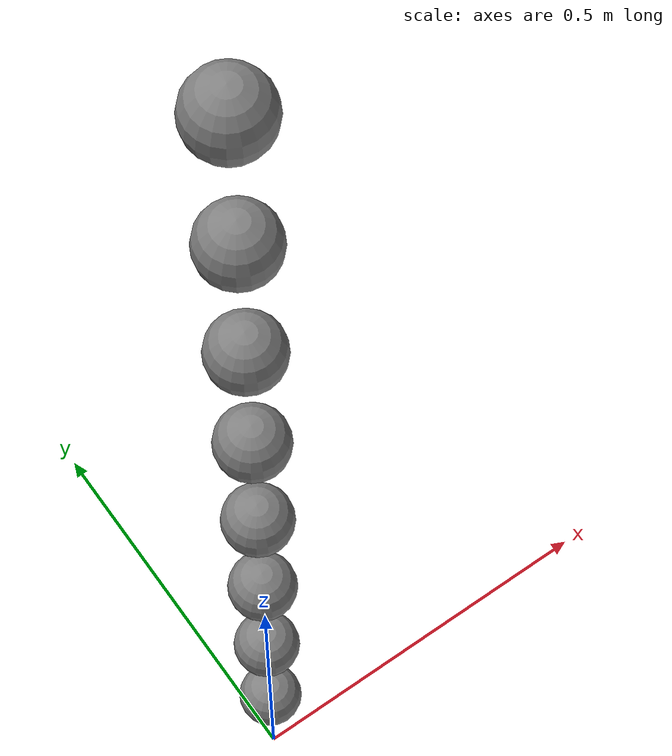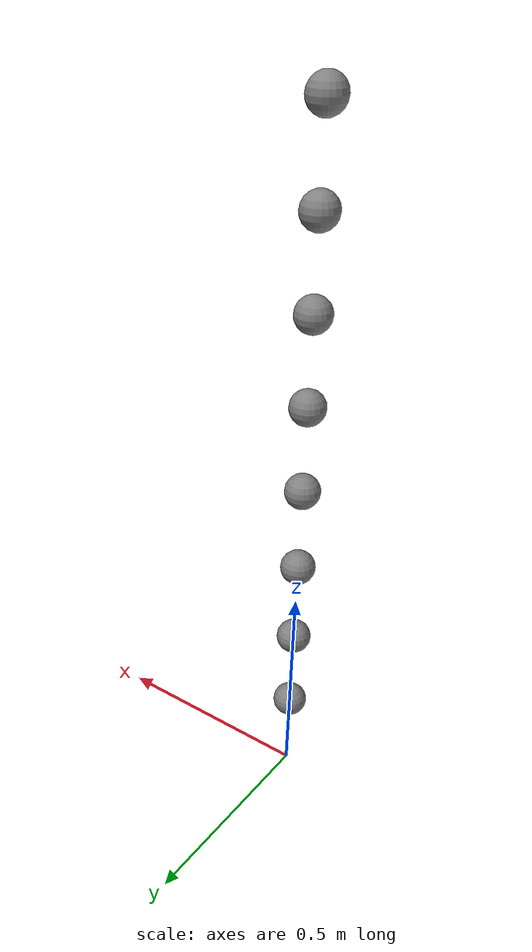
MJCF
<mujoco><option timestep=".002" gravity="0 0 0" jacobian="dense"/><worldbody><body pos="0 0 .2"><joint name="j0"/><geom size=".04" mass="1" contype="0" conaffinity="0"/><body pos="0 0 .2"><joint name="j1"/><geom size=".04" mass="1" contype="0" conaffinity="0"/><body pos="0 0 .2"><joint name="j2"/><geom size=".04" mass="1" contype="0" conaffinity="0"/><body pos="0 0 .2"><joint name="j3"/><geom size=".04" mass="1" contype="0" conaffinity="0"/><body pos="0 0 .2"><joint name="j4"/><geom size=".04" mass="1" contype="0" conaffinity="0"/><body pos="0 0 .2"><joint name="j5"/><geom size=".04" mass="1" contype="0" conaffinity="0"/><body pos="0 0 .2"><joint name="j6"/><geom size=".04" mass="1" contype="0" conaffinity="0"/><body pos="0 0 .2"><joint name="j7"/><geom size=".04" mass="1" contype="0" conaffinity="0"/></body></body></body></body></body></body></body></body></worldbody><actuator><dcmotor joint="j0" motorconst=".2" resistance="2" input="pos vel ff voltage" controller=".5 .8 .2 2 .5 12" cogging=".05 3 .2" inductance="0 .02" thermal="2 10 0 .003 20 20" lugre="30 .1 .2 .3 .1"/><dcmotor joint="j1" motorconst=".2" resistance="2" input="pos vel ff voltage" controller=".5 .8 .2 2 .5 12" cogging=".05 3 .2" inductance="0 .02" thermal="2 10 0 .003 20 20" lugre="30 .1 .2 .3 .1"/><dcmotor joint="j2" motorconst=".2" resistance="2" input="pos vel ff voltage" controller=".5 .8 .2 2 .5 12" cogging=".05 3 .2" inductance="0 .02" thermal="2 10 0 .003 20 20" lugre="30 .1 .2 .3 .1"/><dcmotor joint="j3" motorconst=".2" resistance="2" input="pos vel ff voltage" controller=".5 .8 .2 2 .5 12" cogging=".05 3 .2" inductance="0 .02" thermal="2 10 0 .003 20 20" lugre="30 .1 .2 .3 .1"/><dcmotor joint="j4" motorconst=".2" resistance="2" input="pos vel ff voltage" controller=".5 .8 .2 2 .5 12" cogging=".05 3 .2" inductance="0 .02" thermal="2 10 0 .003 20 20" lugre="30 .1 .2 .3 .1"/><dcmotor joint="j5" motorconst=".2" resistance="2" input="pos vel ff voltage" controller=".5 .8 .2 2 .5 12" cogging=".05 3 .2" inductance="0 .02" thermal="2 10 0 .003 20 20" lugre="30 .1 .2 .3 .1"/><dcmotor joint="j6" motorconst=".2" resistance="2" input="pos vel ff voltage" controller=".5 .8 .2 2 .5 12" cogging=".05 3 .2" inductance="0 .02" thermal="2 10 0 .003 20 20" lugre="30 .1 .2 .3 .1"/><dcmotor joint="j7" motorconst=".2" resistance="2" input="pos vel ff voltage" controller=".5 .8 .2 2 .5 12" cogging=".05 3 .2" inductance="0 .02" thermal="2 10 0 .003 20 20" lugre="30 .1 .2 .3 .1"/></actuator></mujoco>
